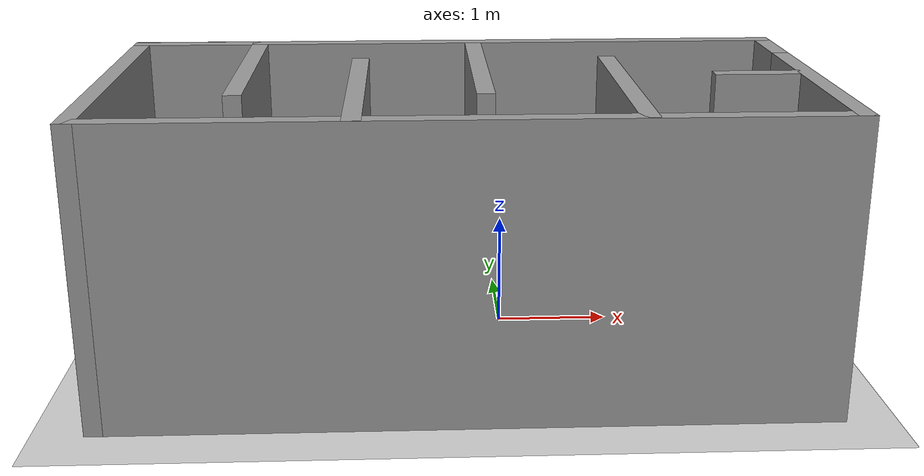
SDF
<sdf version="1.7">
 <world name="default">
  <light name="sun" type="directional">
   <pose>0 0 10 0 -0 0</pose>
   <diffuse>0.8 0.8 0.8 1</diffuse>
   <specular>0.2 0.2 0.2 1</specular>
   <attenuation>
    <range>1000</range>
    <constant>0.9</constant>
    <linear>0.01</linear>
    <quadratic>0.001</quadratic>
   </attenuation>
   <direction>-0.5 0.1 -0.9</direction>
   <spot><inner_angle>0</inner_angle><outer_angle>0</outer_angle><falloff>0</falloff></spot>
  </light>
  <model name="ground_plane">
   <static>1</static>
   <link name="link">
    <collision name="collision">
     <geometry><plane><normal>0 0 1</normal><size>100 100</size></plane></geometry>
     <surface>
      <contact><collide_bitmask>65535</collide_bitmask></contact>
      <friction><ode><mu>100</mu><mu2>50</mu2></ode></friction>
     </surface>
    </collision>
    <visual name="visual">
     <cast_shadows>0</cast_shadows>
     <geometry><plane><normal>0 0 1</normal><size>100 100</size></plane></geometry>
     <material>
      <script><uri>file://media/materials/scripts/gazebo.material</uri><name>Gazebo/Grey</name></script>
     </material>
    </visual>
   </link>
  </model>
  <gravity>0 0 -9.8</gravity>
  <magnetic_field>6e-06 2.3e-05 -4.2e-05</magnetic_field>
  <atmosphere type="adiabatic"/>
  <physics type="ode">
   <max_step_size>0.001</max_step_size>
   <real_time_factor>1</real_time_factor>
   <real_time_update_rate>1000</real_time_update_rate>
  </physics>
  <scene><ambient>0.4 0.4 0.4 1</ambient><background>0.7 0.7 0.7 1</background><shadows>1</shadows></scene>
  <audio><device>default</device></audio>
  <spherical_coordinates>
   <surface_model>EARTH_WGS84</surface_model>
   <latitude_deg>0</latitude_deg>
   <longitude_deg>0</longitude_deg>
   <elevation>0</elevation>
   <heading_deg>0</heading_deg>
  </spherical_coordinates>
  <model name="home_map_1.world">
   <pose>0.081189 -0.041604 0 0 -0 0</pose>
   <link name="Wall_0">
    <collision name="Wall_0_Collision">
     <geometry><box><size>6 0.15 2.5</size></box></geometry>
     <pose>0 0 1.25 0 -0 0</pose>
    </collision>
    <visual name="Wall_0_Visual">
     <pose>0 0 1.25 0 -0 0</pose>
     <geometry><box><size>6 0.15 2.5</size></box></geometry>
     <material>
      <script><uri>file://media/materials/scripts/gazebo.material</uri><name>Gazebo/Grey</name></script>
      <ambient>1 1 1 1</ambient>
     </material>
     <meta><layer>0</layer></meta>
    </visual>
    <pose>-0.462382 0.872613 0 0 -0 0.00338</pose>
   </link>
   <link name="Wall_1">
    <collision name="Wall_1_Collision">
     <geometry><box><size>0.75 0.15 2.5</size></box></geometry>
     <pose>0 0 1.25 0 -0 0</pose>
    </collision>
    <visual name="Wall_1_Visual">
     <pose>0 0 1.25 0 -0 0</pose>
     <geometry><box><size>0.75 0.15 2.5</size></box></geometry>
     <material>
      <script><uri>file://media/materials/scripts/gazebo.material</uri><name>Gazebo/Grey</name></script>
      <ambient>1 1 1 1</ambient>
     </material>
     <meta><layer>0</layer></meta>
    </visual>
    <pose>2.46262 0.5825 0 0 -0 -1.5708</pose>
   </link>
   <link name="Wall_10">
    <collision name="Wall_10_Collision">
     <geometry><box><size>2.25 0.15 2.5</size></box></geometry>
     <pose>0 0 1.25 0 -0 0</pose>
    </collision>
    <visual name="Wall_10_Visual">
     <pose>0 0 1.25 0 -0 0</pose>
     <geometry><box><size>2.25 0.15 2.5</size></box></geometry>
     <material>
      <script><uri>file://media/materials/scripts/gazebo.material</uri><name>Gazebo/Grey</name></script>
      <ambient>1 1 1 1</ambient>
     </material>
     <meta><layer>0</layer></meta>
    </visual>
    <pose>-0.297382 -0.1875 0 0 -0 -1.5708</pose>
   </link>
   <link name="Wall_12">
    <collision name="Wall_12_Collision">
     <geometry><box><size>2.25 0.15 2.5</size></box></geometry>
     <pose>0 0 1.25 0 -0 0</pose>
    </collision>
    <visual name="Wall_12_Visual">
     <pose>0 0 1.25 0 -0 0</pose>
     <geometry><box><size>2.25 0.15 2.5</size></box></geometry>
     <material>
      <script><uri>file://media/materials/scripts/gazebo.material</uri><name>Gazebo/Grey</name></script>
      <ambient>1 1 1 1</ambient>
     </material>
     <meta><layer>0</layer></meta>
    </visual>
    <pose>0.862618 -0.9975 0 0 -0 1.5708</pose>
   </link>
   <link name="Wall_14">
    <collision name="Wall_14_Collision">
     <geometry><box><size>0.75 0.15 2.5</size></box></geometry>
     <pose>0 0 1.25 0 -0 0</pose>
    </collision>
    <visual name="Wall_14_Visual">
     <pose>0 0 1.25 0 -0 0</pose>
     <geometry><box><size>0.75 0.15 2.5</size></box></geometry>
     <material>
      <script><uri>file://media/materials/scripts/gazebo.material</uri><name>Gazebo/Grey</name></script>
      <ambient>1 1 1 1</ambient>
     </material>
     <meta><layer>0</layer></meta>
    </visual>
    <pose>2.04262 -0.6175 0 0 -0 0</pose>
   </link>
   <link name="Wall_2">
    <collision name="Wall_2_Collision">
     <geometry><box><size>2.5 0.15 2.5</size></box></geometry>
     <pose>0 0 1.25 0 -0 0</pose>
    </collision>
    <visual name="Wall_2_Visual">
     <pose>0 0 1.25 0 -0 0</pose>
     <geometry><box><size>2.5 0.15 2.5</size></box></geometry>
     <material>
      <script><uri>file://media/materials/scripts/gazebo.material</uri><name>Gazebo/Grey</name></script>
      <ambient>1 1 1 1</ambient>
     </material>
     <meta><layer>0</layer></meta>
    </visual>
    <pose>2.46262 -0.8925 0 0 -0 -1.5708</pose>
   </link>
   <link name="Wall_3">
    <collision name="Wall_3_Collision">
     <geometry><box><size>6 0.15 2.5</size></box></geometry>
     <pose>0 0 1.25 0 -0 0</pose>
    </collision>
    <visual name="Wall_3_Visual">
     <pose>0 0 1.25 0 -0 0</pose>
     <geometry><box><size>6 0.15 2.5</size></box></geometry>
     <material>
      <script><uri>file://media/materials/scripts/gazebo.material</uri><name>Gazebo/Grey</name></script>
      <ambient>1 1 1 1</ambient>
     </material>
     <meta><layer>0</layer></meta>
    </visual>
    <pose>-0.462382 -2.0675 0 0 -0 3.14159</pose>
   </link>
   <link name="Wall_4">
    <collision name="Wall_4_Collision">
     <geometry><box><size>3.08022 0.15 2.5</size></box></geometry>
     <pose>0 0 1.25 0 -0 0</pose>
    </collision>
    <visual name="Wall_4_Visual">
     <pose>0 0 1.25 0 -0 0</pose>
     <geometry><box><size>3.08022 0.15 2.5</size></box></geometry>
     <material>
      <script><uri>file://media/materials/scripts/gazebo.material</uri><name>Gazebo/Grey</name></script>
      <ambient>1 1 1 1</ambient>
     </material>
     <meta><layer>0</layer></meta>
    </visual>
    <pose>-3.38738 -0.602387 0 0 -0 1.5708</pose>
   </link>
   <link name="Wall_5">
    <collision name="Wall_5_Collision">
     <geometry><box><size>1.25 0.15 2.5</size></box></geometry>
     <pose>0 0 1.25 0 -0 0</pose>
    </collision>
    <visual name="Wall_5_Visual">
     <pose>0 0 1.25 0 -0 0</pose>
     <geometry><box><size>1.25 0.15 2.5</size></box></geometry>
     <material>
      <script><uri>file://media/materials/scripts/gazebo.material</uri><name>Gazebo/Grey</name></script>
      <ambient>1 1 1 1</ambient>
     </material>
     <meta><layer>0</layer></meta>
    </visual>
    <pose>-2.83738 0.872613 0 0 -0 0</pose>
   </link>
   <link name="Wall_6">
    <collision name="Wall_6_Collision">
     <geometry><box><size>2.23022 0.15 2.5</size></box></geometry>
     <pose>0 0 1.25 0 -0 0</pose>
    </collision>
    <visual name="Wall_6_Visual">
     <pose>0 0 1.25 0 -0 0</pose>
     <geometry><box><size>2.23022 0.15 2.5</size></box></geometry>
     <material>
      <script><uri>file://media/materials/scripts/gazebo.material</uri><name>Gazebo/Grey</name></script>
      <ambient>1 1 1 1</ambient>
     </material>
     <meta><layer>0</layer></meta>
    </visual>
    <pose>-2.28738 -0.177387 0 0 -0 -1.5708</pose>
   </link>
   <link name="Wall_8">
    <collision name="Wall_8_Collision">
     <geometry><box><size>2.25 0.15 2.5</size></box></geometry>
     <pose>0 0 1.25 0 -0 0</pose>
    </collision>
    <visual name="Wall_8_Visual">
     <pose>0 0 1.25 0 -0 0</pose>
     <geometry><box><size>2.25 0.15 2.5</size></box></geometry>
     <material>
      <script><uri>file://media/materials/scripts/gazebo.material</uri><name>Gazebo/Grey</name></script>
      <ambient>1 1 1 1</ambient>
     </material>
     <meta><layer>0</layer></meta>
    </visual>
    <pose>-1.32639 -1.0115 0 0 -0 1.5708</pose>
   </link>
   <static>1</static>
  </model>
 </world>
</sdf>
